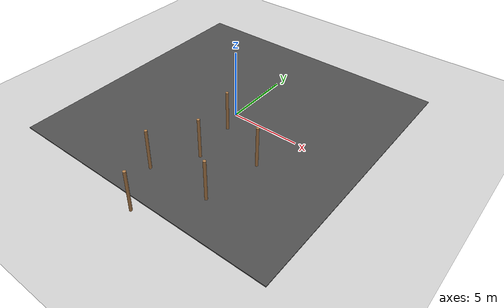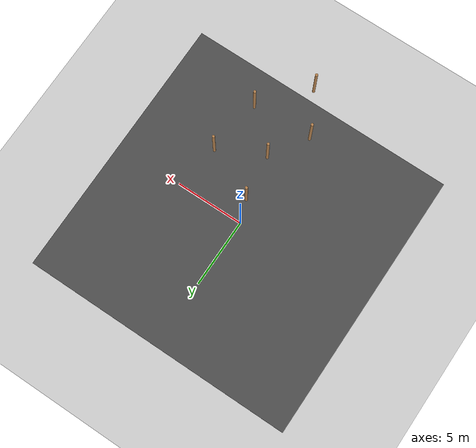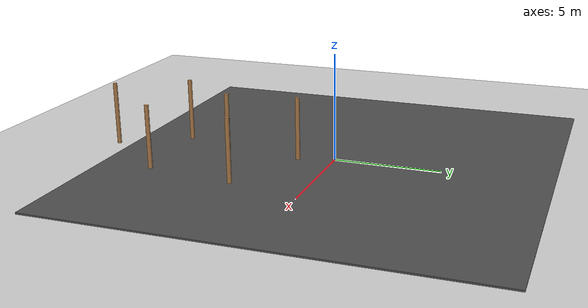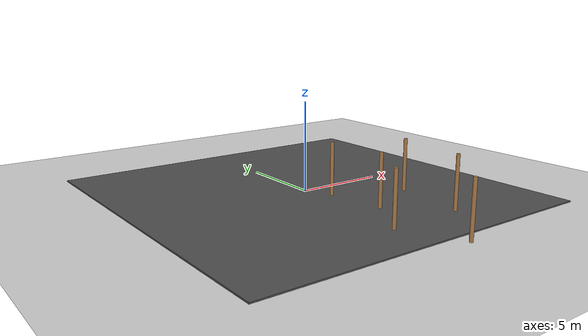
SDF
<sdf version="1.6">
 <world name="default">
  <include><uri>model://ground_plane</uri></include>
  <model name="asphalt_plane">
   <static>1</static>
   <link name="link">
    <collision name="collision"><geometry><box><size>20 20 0.1</size></box></geometry></collision>
    <visual name="visual">
     <cast_shadows>0</cast_shadows>
     <geometry><box><size>20 20 0.1</size></box></geometry>
     <material>
      <script>
       <uri>model://asphalt_plane/materials/scripts</uri>
       <uri>model://asphalt_plane/materials/textures</uri>
       <name>vrc/asphalt</name>
      </script>
     </material>
    </visual>
   </link>
  </model>
  <model name="wooden_cylinder1_clone_12">
   <pose>1.05943 -4.89483 8e-06 0 -0 0</pose>
   <link name="wooden_cylinder::link_0">
    <pose>0 0 1.5 0 -0 0</pose>
    <inertial>
     <mass>1</mass>
     <inertia><ixx>0.145833</ixx><ixy>0</ixy><ixz>0</ixz><iyy>0.145833</iyy><iyz>0</iyz><izz>0.125</izz></inertia>
    </inertial>
    <visual name="visual">
     <geometry><cylinder><radius>0.1</radius><length>3</length></cylinder></geometry>
     <material>
      <lighting>1</lighting>
      <script><uri>file://media/materials/scripts/gazebo.material</uri><name>Gazebo/Wood</name></script>
      <ambient>0.3 0.3 0.3 1</ambient>
      <diffuse>0.7 0.7 0.7 1</diffuse>
      <specular>0.01 0.01 0.01 1</specular>
      <emissive>0 0 0 1</emissive>
      <shader type="vertex"><normal_map>__default__</normal_map></shader>
     </material>
    </visual>
    <collision name="collision">
     <geometry><cylinder><radius>0.1</radius><length>3</length></cylinder></geometry>
     <surface>
      <friction>
       <ode><mu>1</mu><mu2>1</mu2><fdir1>0 0 0</fdir1><slip1>0</slip1><slip2>0</slip2></ode>
       <torsional>
        <coefficient>1</coefficient>
        <patch_radius>0</patch_radius>
        <surface_radius>0</surface_radius>
        <use_patch_radius>1</use_patch_radius>
        <ode><slip>0</slip></ode>
       </torsional>
      </friction>
      <bounce><restitution_coefficient>0</restitution_coefficient><threshold>1e+06</threshold></bounce>
      <contact>
       <collide_without_contact>0</collide_without_contact>
       <collide_without_contact_bitmask>1</collide_without_contact_bitmask>
       <collide_bitmask>1</collide_bitmask>
       <ode>
        <soft_cfm>0</soft_cfm>
        <soft_erp>0.2</soft_erp>
        <kp>1e+13</kp>
        <kd>1</kd>
        <max_vel>0.01</max_vel>
        <min_depth>0</min_depth>
       </ode>
       <bullet>
        <split_impulse>1</split_impulse>
        <split_impulse_penetration_threshold>-0.01</split_impulse_penetration_threshold>
        <soft_cfm>0</soft_cfm>
        <soft_erp>0.2</soft_erp>
        <kp>1e+13</kp>
        <kd>1</kd>
       </bullet>
      </contact>
     </surface>
    </collision>
   </link>
   <static>1</static>
  </model>
  <model name="wooden_cylinder1_clone_14">
   <pose>-0.619086 -7.63483 -3.8e-05 0 -0 0</pose>
   <link name="wooden_cylinder::link_0">
    <pose>0 0 1.5 0 -0 0</pose>
    <inertial>
     <mass>1</mass>
     <inertia><ixx>0.145833</ixx><ixy>0</ixy><ixz>0</ixz><iyy>0.145833</iyy><iyz>0</iyz><izz>0.125</izz></inertia>
    </inertial>
    <visual name="visual">
     <geometry><cylinder><radius>0.1</radius><length>3</length></cylinder></geometry>
     <material>
      <lighting>1</lighting>
      <script><uri>file://media/materials/scripts/gazebo.material</uri><name>Gazebo/Wood</name></script>
      <ambient>0.3 0.3 0.3 1</ambient>
      <diffuse>0.7 0.7 0.7 1</diffuse>
      <specular>0.01 0.01 0.01 1</specular>
      <emissive>0 0 0 1</emissive>
      <shader type="vertex"><normal_map>__default__</normal_map></shader>
     </material>
    </visual>
    <collision name="collision">
     <geometry><cylinder><radius>0.1</radius><length>3</length></cylinder></geometry>
     <surface>
      <friction>
       <ode><mu>1</mu><mu2>1</mu2><fdir1>0 0 0</fdir1><slip1>0</slip1><slip2>0</slip2></ode>
       <torsional>
        <coefficient>1</coefficient>
        <patch_radius>0</patch_radius>
        <surface_radius>0</surface_radius>
        <use_patch_radius>1</use_patch_radius>
        <ode><slip>0</slip></ode>
       </torsional>
      </friction>
      <bounce><restitution_coefficient>0</restitution_coefficient><threshold>1e+06</threshold></bounce>
      <contact>
       <collide_without_contact>0</collide_without_contact>
       <collide_without_contact_bitmask>1</collide_without_contact_bitmask>
       <collide_bitmask>1</collide_bitmask>
       <ode>
        <soft_cfm>0</soft_cfm>
        <soft_erp>0.2</soft_erp>
        <kp>1e+13</kp>
        <kd>1</kd>
        <max_vel>0.01</max_vel>
        <min_depth>0</min_depth>
       </ode>
       <bullet>
        <split_impulse>1</split_impulse>
        <split_impulse_penetration_threshold>-0.01</split_impulse_penetration_threshold>
        <soft_cfm>0</soft_cfm>
        <soft_erp>0.2</soft_erp>
        <kp>1e+13</kp>
        <kd>1</kd>
       </bullet>
      </contact>
     </surface>
    </collision>
   </link>
   <static>1</static>
  </model>
  <model name="wooden_cylinder1_clone_18">
   <pose>1.05229 -10.7459 3e-05 0 -0 0</pose>
   <link name="wooden_cylinder::link_0">
    <pose>0 0 1.5 0 -0 0</pose>
    <inertial>
     <mass>1</mass>
     <inertia><ixx>0.145833</ixx><ixy>0</ixy><ixz>0</ixz><iyy>0.145833</iyy><iyz>0</iyz><izz>0.125</izz></inertia>
    </inertial>
    <visual name="visual">
     <geometry><cylinder><radius>0.1</radius><length>3</length></cylinder></geometry>
     <material>
      <lighting>1</lighting>
      <script><uri>file://media/materials/scripts/gazebo.material</uri><name>Gazebo/Wood</name></script>
      <ambient>0.3 0.3 0.3 1</ambient>
      <diffuse>0.7 0.7 0.7 1</diffuse>
      <specular>0.01 0.01 0.01 1</specular>
      <emissive>0 0 0 1</emissive>
      <shader type="vertex"><normal_map>__default__</normal_map></shader>
     </material>
    </visual>
    <collision name="collision">
     <geometry><cylinder><radius>0.1</radius><length>3</length></cylinder></geometry>
     <surface>
      <friction>
       <ode><mu>1</mu><mu2>1</mu2><fdir1>0 0 0</fdir1><slip1>0</slip1><slip2>0</slip2></ode>
       <torsional>
        <coefficient>1</coefficient>
        <patch_radius>0</patch_radius>
        <surface_radius>0</surface_radius>
        <use_patch_radius>1</use_patch_radius>
        <ode><slip>0</slip></ode>
       </torsional>
      </friction>
      <bounce><restitution_coefficient>0</restitution_coefficient><threshold>1e+06</threshold></bounce>
      <contact>
       <collide_without_contact>0</collide_without_contact>
       <collide_without_contact_bitmask>1</collide_without_contact_bitmask>
       <collide_bitmask>1</collide_bitmask>
       <ode>
        <soft_cfm>0</soft_cfm>
        <soft_erp>0.2</soft_erp>
        <kp>1e+13</kp>
        <kd>1</kd>
        <max_vel>0.01</max_vel>
        <min_depth>0</min_depth>
       </ode>
       <bullet>
        <split_impulse>1</split_impulse>
        <split_impulse_penetration_threshold>-0.01</split_impulse_penetration_threshold>
        <soft_cfm>0</soft_cfm>
        <soft_erp>0.2</soft_erp>
        <kp>1e+13</kp>
        <kd>1</kd>
       </bullet>
      </contact>
     </surface>
    </collision>
   </link>
   <static>1</static>
  </model>
  <model name="wooden_cylinder1_clone_20">
   <pose>3.82649 -7.44946 -9.6e-05 0 -0 0</pose>
   <link name="wooden_cylinder::link_0">
    <pose>0 0 1.5 0 -0 0</pose>
    <inertial>
     <mass>1</mass>
     <inertia><ixx>0.145833</ixx><ixy>0</ixy><ixz>0</ixz><iyy>0.145833</iyy><iyz>0</iyz><izz>0.125</izz></inertia>
    </inertial>
    <visual name="visual">
     <geometry><cylinder><radius>0.1</radius><length>3</length></cylinder></geometry>
     <material>
      <lighting>1</lighting>
      <script><uri>file://media/materials/scripts/gazebo.material</uri><name>Gazebo/Wood</name></script>
      <ambient>0.3 0.3 0.3 1</ambient>
      <diffuse>0.7 0.7 0.7 1</diffuse>
      <specular>0.01 0.01 0.01 1</specular>
      <emissive>0 0 0 1</emissive>
      <shader type="vertex"><normal_map>__default__</normal_map></shader>
     </material>
    </visual>
    <collision name="collision">
     <geometry><cylinder><radius>0.1</radius><length>3</length></cylinder></geometry>
     <surface>
      <friction>
       <ode><mu>1</mu><mu2>1</mu2><fdir1>0 0 0</fdir1><slip1>0</slip1><slip2>0</slip2></ode>
       <torsional>
        <coefficient>1</coefficient>
        <patch_radius>0</patch_radius>
        <surface_radius>0</surface_radius>
        <use_patch_radius>1</use_patch_radius>
        <ode><slip>0</slip></ode>
       </torsional>
      </friction>
      <bounce><restitution_coefficient>0</restitution_coefficient><threshold>1e+06</threshold></bounce>
      <contact>
       <collide_without_contact>0</collide_without_contact>
       <collide_without_contact_bitmask>1</collide_without_contact_bitmask>
       <collide_bitmask>1</collide_bitmask>
       <ode>
        <soft_cfm>0</soft_cfm>
        <soft_erp>0.2</soft_erp>
        <kp>1e+13</kp>
        <kd>1</kd>
        <max_vel>0.01</max_vel>
        <min_depth>0</min_depth>
       </ode>
       <bullet>
        <split_impulse>1</split_impulse>
        <split_impulse_penetration_threshold>-0.01</split_impulse_penetration_threshold>
        <soft_cfm>0</soft_cfm>
        <soft_erp>0.2</soft_erp>
        <kp>1e+13</kp>
        <kd>1</kd>
       </bullet>
      </contact>
     </surface>
    </collision>
   </link>
   <static>1</static>
  </model>
  <model name="wooden_cylinder1_clone_23">
   <pose>4.35296 -3.31184 -0.000177 0 -0 0</pose>
   <link name="wooden_cylinder::link_0">
    <pose>0 0 1.5 0 -0 0</pose>
    <inertial>
     <mass>1</mass>
     <inertia><ixx>0.145833</ixx><ixy>0</ixy><ixz>0</ixz><iyy>0.145833</iyy><iyz>0</iyz><izz>0.125</izz></inertia>
    </inertial>
    <visual name="visual">
     <geometry><cylinder><radius>0.1</radius><length>3</length></cylinder></geometry>
     <material>
      <lighting>1</lighting>
      <script><uri>file://media/materials/scripts/gazebo.material</uri><name>Gazebo/Wood</name></script>
      <ambient>0.3 0.3 0.3 1</ambient>
      <diffuse>0.7 0.7 0.7 1</diffuse>
      <specular>0.01 0.01 0.01 1</specular>
      <emissive>0 0 0 1</emissive>
      <shader type="vertex"><normal_map>__default__</normal_map></shader>
     </material>
    </visual>
    <collision name="collision">
     <geometry><cylinder><radius>0.1</radius><length>3</length></cylinder></geometry>
     <surface>
      <friction>
       <ode><mu>1</mu><mu2>1</mu2><fdir1>0 0 0</fdir1><slip1>0</slip1><slip2>0</slip2></ode>
       <torsional>
        <coefficient>1</coefficient>
        <patch_radius>0</patch_radius>
        <surface_radius>0</surface_radius>
        <use_patch_radius>1</use_patch_radius>
        <ode><slip>0</slip></ode>
       </torsional>
      </friction>
      <bounce><restitution_coefficient>0</restitution_coefficient><threshold>1e+06</threshold></bounce>
      <contact>
       <collide_without_contact>0</collide_without_contact>
       <collide_without_contact_bitmask>1</collide_without_contact_bitmask>
       <collide_bitmask>1</collide_bitmask>
       <ode>
        <soft_cfm>0</soft_cfm>
        <soft_erp>0.2</soft_erp>
        <kp>1e+13</kp>
        <kd>1</kd>
        <max_vel>0.01</max_vel>
        <min_depth>0</min_depth>
       </ode>
       <bullet>
        <split_impulse>1</split_impulse>
        <split_impulse_penetration_threshold>-0.01</split_impulse_penetration_threshold>
        <soft_cfm>0</soft_cfm>
        <soft_erp>0.2</soft_erp>
        <kp>1e+13</kp>
        <kd>1</kd>
       </bullet>
      </contact>
     </surface>
    </collision>
   </link>
   <static>1</static>
  </model>
  <model name="wooden_cylinder1_clone_24">
   <pose>0.582381 -1.60032 7e-05 0 -0 0</pose>
   <link name="wooden_cylinder::link_0">
    <pose>0 0 1.5 0 -0 0</pose>
    <inertial>
     <mass>1</mass>
     <inertia><ixx>0.145833</ixx><ixy>0</ixy><ixz>0</ixz><iyy>0.145833</iyy><iyz>0</iyz><izz>0.125</izz></inertia>
    </inertial>
    <visual name="visual">
     <geometry><cylinder><radius>0.1</radius><length>3</length></cylinder></geometry>
     <material>
      <lighting>1</lighting>
      <script><uri>file://media/materials/scripts/gazebo.material</uri><name>Gazebo/Wood</name></script>
      <ambient>0.3 0.3 0.3 1</ambient>
      <diffuse>0.7 0.7 0.7 1</diffuse>
      <specular>0.01 0.01 0.01 1</specular>
      <emissive>0 0 0 1</emissive>
      <shader type="vertex"><normal_map>__default__</normal_map></shader>
     </material>
    </visual>
    <collision name="collision">
     <geometry><cylinder><radius>0.1</radius><length>3</length></cylinder></geometry>
     <surface>
      <friction>
       <ode><mu>1</mu><mu2>1</mu2><fdir1>0 0 0</fdir1><slip1>0</slip1><slip2>0</slip2></ode>
       <torsional>
        <coefficient>1</coefficient>
        <patch_radius>0</patch_radius>
        <surface_radius>0</surface_radius>
        <use_patch_radius>1</use_patch_radius>
        <ode><slip>0</slip></ode>
       </torsional>
      </friction>
      <bounce><restitution_coefficient>0</restitution_coefficient><threshold>1e+06</threshold></bounce>
      <contact>
       <collide_without_contact>0</collide_without_contact>
       <collide_without_contact_bitmask>1</collide_without_contact_bitmask>
       <collide_bitmask>1</collide_bitmask>
       <ode>
        <soft_cfm>0</soft_cfm>
        <soft_erp>0.2</soft_erp>
        <kp>1e+13</kp>
        <kd>1</kd>
        <max_vel>0.01</max_vel>
        <min_depth>0</min_depth>
       </ode>
       <bullet>
        <split_impulse>1</split_impulse>
        <split_impulse_penetration_threshold>-0.01</split_impulse_penetration_threshold>
        <soft_cfm>0</soft_cfm>
        <soft_erp>0.2</soft_erp>
        <kp>1e+13</kp>
        <kd>1</kd>
       </bullet>
      </contact>
     </surface>
    </collision>
   </link>
   <static>1</static>
  </model>
 </world>
</sdf>
